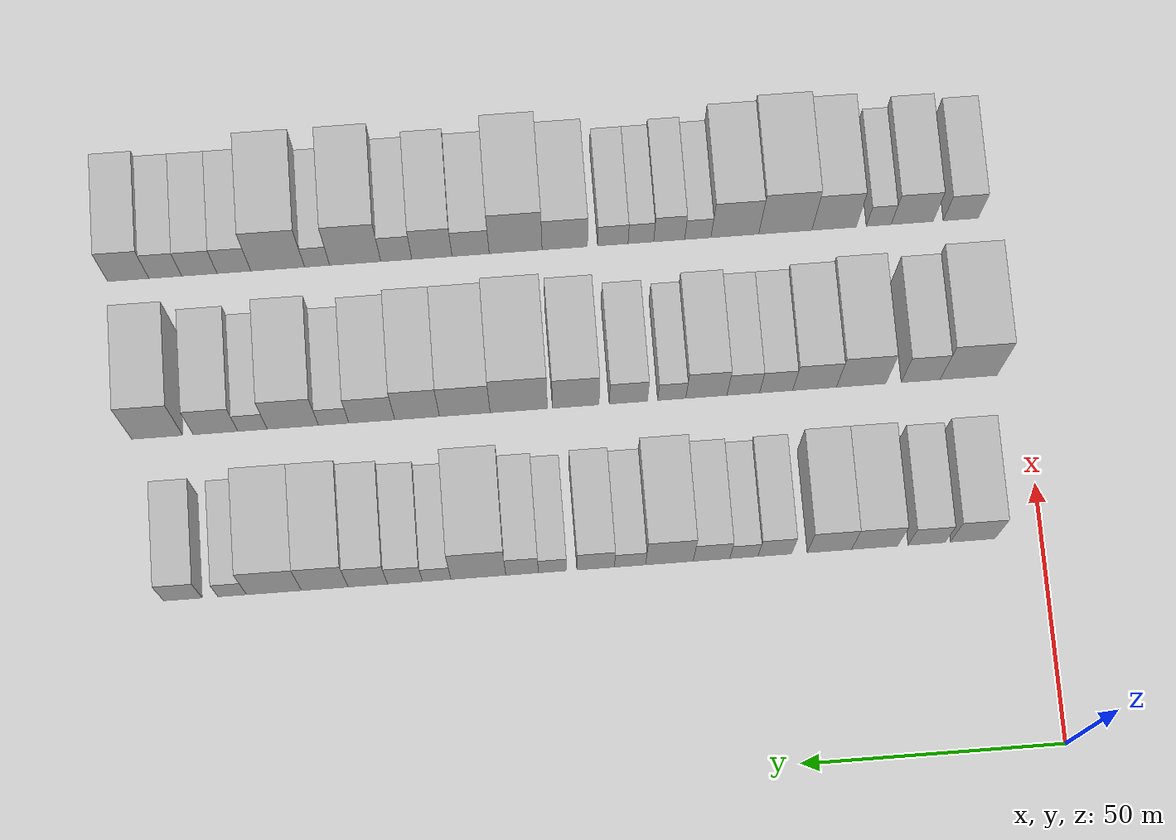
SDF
<sdf version="1.6">
 <world name="default">
  <model name="building_42">
   <static>1</static>
   <pose>50.0000 13.2089 0 0.000000 0.000000 0.000000</pose>
   <link name="link">
    <pose>0 0 9.00 0 0 0</pose>
    <collision name="collision"><geometry><box><size>20.0000 8.5713 18.0000</size></box></geometry></collision>
    <visual name="visual">
     <cast_shadows>0</cast_shadows>
     <geometry><box><size>20.0000 8.5713 18.0000</size></box></geometry>
     <material>
      <script>
       <uri>model://HANNAS_wall/materials/scripts</uri>
       <uri>model://HANNAS_wall/materials/textures</uri>
       <name>vrc/HANNAS_wall</name>
      </script>
     </material>
    </visual>
   </link>
  </model>
  <model name="building_43">
   <static>1</static>
   <pose>50.0000 22.0549 0 0.000000 0.000000 0.000000</pose>
   <link name="link">
    <pose>0 0 7.50 0 0 0</pose>
    <collision name="collision"><geometry><box><size>20.0000 7.1205 15.0000</size></box></geometry></collision>
    <visual name="visual">
     <cast_shadows>0</cast_shadows>
     <geometry><box><size>20.0000 7.1205 15.0000</size></box></geometry>
     <material>
      <script>
       <uri>model://HANNAS_wall/materials/scripts</uri>
       <uri>model://HANNAS_wall/materials/textures</uri>
       <name>vrc/HANNAS_wall</name>
      </script>
     </material>
    </visual>
   </link>
  </model>
  <model name="building_44">
   <static>1</static>
   <pose>50.0000 32.0292 0 0.000000 0.000000 0.000000</pose>
   <link name="link">
    <pose>0 0 9.00 0 0 0</pose>
    <collision name="collision"><geometry><box><size>20.0000 8.8283 18.0000</size></box></geometry></collision>
    <visual name="visual">
     <cast_shadows>0</cast_shadows>
     <geometry><box><size>20.0000 8.8283 18.0000</size></box></geometry>
     <material>
      <script>
       <uri>model://HANNAS_wall/materials/scripts</uri>
       <uri>model://HANNAS_wall/materials/textures</uri>
       <name>vrc/HANNAS_wall</name>
      </script>
     </material>
    </visual>
   </link>
  </model>
  <model name="building_45">
   <static>1</static>
   <pose>50.0000 40.6989 0 0.000000 0.000000 0.000000</pose>
   <link name="link">
    <pose>0 0 9.00 0 0 0</pose>
    <collision name="collision"><geometry><box><size>20.0000 8.5111 18.0000</size></box></geometry></collision>
    <visual name="visual">
     <cast_shadows>0</cast_shadows>
     <geometry><box><size>20.0000 8.5111 18.0000</size></box></geometry>
     <material>
      <script>
       <uri>model://HANNAS_wall/materials/scripts</uri>
       <uri>model://HANNAS_wall/materials/textures</uri>
       <name>vrc/HANNAS_wall</name>
      </script>
     </material>
    </visual>
   </link>
  </model>
  <model name="building_46">
   <static>1</static>
   <pose>50.0000 51.1816 0 0.000000 0.000000 0.000000</pose>
   <link name="link">
    <pose>0 0 7.50 0 0 0</pose>
    <collision name="collision"><geometry><box><size>20.0000 6.4541 15.0000</size></box></geometry></collision>
    <visual name="visual">
     <cast_shadows>0</cast_shadows>
     <geometry><box><size>20.0000 6.4541 15.0000</size></box></geometry>
     <material>
      <script>
       <uri>model://HANNAS_wall/materials/scripts</uri>
       <uri>model://HANNAS_wall/materials/textures</uri>
       <name>vrc/HANNAS_wall</name>
      </script>
     </material>
    </visual>
   </link>
  </model>
  <model name="building_47">
   <static>1</static>
   <pose>50.0000 57.1054 0 0.000000 0.000000 0.000000</pose>
   <link name="link">
    <pose>0 0 6.00 0 0 0</pose>
    <collision name="collision"><geometry><box><size>20.0000 5.3936 12.0000</size></box></geometry></collision>
    <visual name="visual">
     <cast_shadows>0</cast_shadows>
     <geometry><box><size>20.0000 5.3936 12.0000</size></box></geometry>
     <material>
      <script>
       <uri>model://HANNAS_wall/materials/scripts</uri>
       <uri>model://HANNAS_wall/materials/textures</uri>
       <name>vrc/HANNAS_wall</name>
      </script>
     </material>
    </visual>
   </link>
  </model>
  <model name="building_48">
   <static>1</static>
   <pose>50.0000 63.3091 0 0.000000 0.000000 0.000000</pose>
   <link name="link">
    <pose>0 0 7.50 0 0 0</pose>
    <collision name="collision"><geometry><box><size>20.0000 7.0137 15.0000</size></box></geometry></collision>
    <visual name="visual">
     <cast_shadows>0</cast_shadows>
     <geometry><box><size>20.0000 7.0137 15.0000</size></box></geometry>
     <material>
      <script>
       <uri>model://HANNAS_wall/materials/scripts</uri>
       <uri>model://HANNAS_wall/materials/textures</uri>
       <name>vrc/HANNAS_wall</name>
      </script>
     </material>
    </visual>
   </link>
  </model>
  <model name="building_49">
   <static>1</static>
   <pose>50.0000 71.3637 0 0.000000 0.000000 0.000000</pose>
   <link name="link">
    <pose>0 0 10.50 0 0 0</pose>
    <collision name="collision"><geometry><box><size>20.0000 9.0956 21.0000</size></box></geometry></collision>
    <visual name="visual">
     <cast_shadows>0</cast_shadows>
     <geometry><box><size>20.0000 9.0956 21.0000</size></box></geometry>
     <material>
      <script>
       <uri>model://HANNAS_wall/materials/scripts</uri>
       <uri>model://HANNAS_wall/materials/textures</uri>
       <name>vrc/HANNAS_wall</name>
      </script>
     </material>
    </visual>
   </link>
  </model>
  <model name="building_50">
   <static>1</static>
   <pose>50.0000 78.8789 0 0.000000 0.000000 0.000000</pose>
   <link name="link">
    <pose>0 0 6.00 0 0 0</pose>
    <collision name="collision"><geometry><box><size>20.0000 5.9347 12.0000</size></box></geometry></collision>
    <visual name="visual">
     <cast_shadows>0</cast_shadows>
     <geometry><box><size>20.0000 5.9347 12.0000</size></box></geometry>
     <material>
      <script>
       <uri>model://HANNAS_wall/materials/scripts</uri>
       <uri>model://HANNAS_wall/materials/textures</uri>
       <name>vrc/HANNAS_wall</name>
      </script>
     </material>
    </visual>
   </link>
  </model>
  <model name="building_51">
   <static>1</static>
   <pose>50.0000 85.4287 0 0.000000 0.000000 0.000000</pose>
   <link name="link">
    <pose>0 0 7.50 0 0 0</pose>
    <collision name="collision"><geometry><box><size>20.0000 7.1651 15.0000</size></box></geometry></collision>
    <visual name="visual">
     <cast_shadows>0</cast_shadows>
     <geometry><box><size>20.0000 7.1651 15.0000</size></box></geometry>
     <material>
      <script>
       <uri>model://HANNAS_wall/materials/scripts</uri>
       <uri>model://HANNAS_wall/materials/textures</uri>
       <name>vrc/HANNAS_wall</name>
      </script>
     </material>
    </visual>
   </link>
  </model>
  <model name="building_52">
   <static>1</static>
   <pose>50.0000 93.6907 0 0.000000 0.000000 0.000000</pose>
   <link name="link">
    <pose>0 0 6.00 0 0 0</pose>
    <collision name="collision"><geometry><box><size>20.0000 5.3589 12.0000</size></box></geometry></collision>
    <visual name="visual">
     <cast_shadows>0</cast_shadows>
     <geometry><box><size>20.0000 5.3589 12.0000</size></box></geometry>
     <material>
      <script>
       <uri>model://HANNAS_wall/materials/scripts</uri>
       <uri>model://HANNAS_wall/materials/textures</uri>
       <name>vrc/HANNAS_wall</name>
      </script>
     </material>
    </visual>
   </link>
  </model>
  <model name="building_53">
   <static>1</static>
   <pose>50.0000 99.4833 0 0.000000 0.000000 0.000000</pose>
   <link name="link">
    <pose>0 0 7.50 0 0 0</pose>
    <collision name="collision"><geometry><box><size>20.0000 6.2262 15.0000</size></box></geometry></collision>
    <visual name="visual">
     <cast_shadows>0</cast_shadows>
     <geometry><box><size>20.0000 6.2262 15.0000</size></box></geometry>
     <material>
      <script>
       <uri>model://HANNAS_wall/materials/scripts</uri>
       <uri>model://HANNAS_wall/materials/textures</uri>
       <name>vrc/HANNAS_wall</name>
      </script>
     </material>
    </visual>
   </link>
  </model>
  <model name="building_54">
   <static>1</static>
   <pose>50.0000 107.8251 0 0.000000 0.000000 0.000000</pose>
   <link name="link">
    <pose>0 0 12.00 0 0 0</pose>
    <collision name="collision"><geometry><box><size>20.0000 10.4574 24.0000</size></box></geometry></collision>
    <visual name="visual">
     <cast_shadows>0</cast_shadows>
     <geometry><box><size>20.0000 10.4574 24.0000</size></box></geometry>
     <material>
      <script>
       <uri>model://HANNAS_wall/materials/scripts</uri>
       <uri>model://HANNAS_wall/materials/textures</uri>
       <name>vrc/HANNAS_wall</name>
      </script>
     </material>
    </visual>
   </link>
  </model>
  <model name="building_55">
   <static>1</static>
   <pose>50.0000 115.7658 0 0.000000 0.000000 0.000000</pose>
   <link name="link">
    <pose>0 0 6.00 0 0 0</pose>
    <collision name="collision"><geometry><box><size>20.0000 5.4240 12.0000</size></box></geometry></collision>
    <visual name="visual">
     <cast_shadows>0</cast_shadows>
     <geometry><box><size>20.0000 5.4240 12.0000</size></box></geometry>
     <material>
      <script>
       <uri>model://HANNAS_wall/materials/scripts</uri>
       <uri>model://HANNAS_wall/materials/textures</uri>
       <name>vrc/HANNAS_wall</name>
      </script>
     </material>
    </visual>
   </link>
  </model>
  <model name="building_56">
   <static>1</static>
   <pose>50.0000 121.8006 0 0.000000 0.000000 0.000000</pose>
   <link name="link">
    <pose>0 0 7.50 0 0 0</pose>
    <collision name="collision"><geometry><box><size>20.0000 6.6455 15.0000</size></box></geometry></collision>
    <visual name="visual">
     <cast_shadows>0</cast_shadows>
     <geometry><box><size>20.0000 6.6455 15.0000</size></box></geometry>
     <material>
      <script>
       <uri>model://HANNAS_wall/materials/scripts</uri>
       <uri>model://HANNAS_wall/materials/textures</uri>
       <name>vrc/HANNAS_wall</name>
      </script>
     </material>
    </visual>
   </link>
  </model>
  <model name="building_57">
   <static>1</static>
   <pose>50.0000 128.8686 0 0.000000 0.000000 0.000000</pose>
   <link name="link">
    <pose>0 0 9.00 0 0 0</pose>
    <collision name="collision"><geometry><box><size>20.0000 7.4904 18.0000</size></box></geometry></collision>
    <visual name="visual">
     <cast_shadows>0</cast_shadows>
     <geometry><box><size>20.0000 7.4904 18.0000</size></box></geometry>
     <material>
      <script>
       <uri>model://HANNAS_wall/materials/scripts</uri>
       <uri>model://HANNAS_wall/materials/textures</uri>
       <name>vrc/HANNAS_wall</name>
      </script>
     </material>
    </visual>
   </link>
  </model>
  <model name="building_58">
   <static>1</static>
   <pose>50.0000 137.0572 0 0.000000 0.000000 0.000000</pose>
   <link name="link">
    <pose>0 0 10.50 0 0 0</pose>
    <collision name="collision"><geometry><box><size>20.0000 8.8868 21.0000</size></box></geometry></collision>
    <visual name="visual">
     <cast_shadows>0</cast_shadows>
     <geometry><box><size>20.0000 8.8868 21.0000</size></box></geometry>
     <material>
      <script>
       <uri>model://HANNAS_wall/materials/scripts</uri>
       <uri>model://HANNAS_wall/materials/textures</uri>
       <name>vrc/HANNAS_wall</name>
      </script>
     </material>
    </visual>
   </link>
  </model>
  <model name="building_59">
   <static>1</static>
   <pose>50.0000 146.7408 0 0.000000 0.000000 0.000000</pose>
   <link name="link">
    <pose>0 0 10.50 0 0 0</pose>
    <collision name="collision"><geometry><box><size>20.0000 10.4805 21.0000</size></box></geometry></collision>
    <visual name="visual">
     <cast_shadows>0</cast_shadows>
     <geometry><box><size>20.0000 10.4805 21.0000</size></box></geometry>
     <material>
      <script>
       <uri>model://HANNAS_wall/materials/scripts</uri>
       <uri>model://HANNAS_wall/materials/textures</uri>
       <name>vrc/HANNAS_wall</name>
      </script>
     </material>
    </visual>
   </link>
  </model>
  <model name="building_60">
   <static>1</static>
   <pose>50.0000 154.7017 0 0.000000 0.000000 0.000000</pose>
   <link name="link">
    <pose>0 0 6.00 0 0 0</pose>
    <collision name="collision"><geometry><box><size>20.0000 5.4412 12.0000</size></box></geometry></collision>
    <visual name="visual">
     <cast_shadows>0</cast_shadows>
     <geometry><box><size>20.0000 5.4412 12.0000</size></box></geometry>
     <material>
      <script>
       <uri>model://HANNAS_wall/materials/scripts</uri>
       <uri>model://HANNAS_wall/materials/textures</uri>
       <name>vrc/HANNAS_wall</name>
      </script>
     </material>
    </visual>
   </link>
  </model>
  <model name="building_61">
   <static>1</static>
   <pose>50.0000 164.0744 0 0.000000 0.000000 0.000000</pose>
   <link name="link">
    <pose>0 0 7.50 0 0 0</pose>
    <collision name="collision"><geometry><box><size>20.0000 7.3042 15.0000</size></box></geometry></collision>
    <visual name="visual">
     <cast_shadows>0</cast_shadows>
     <geometry><box><size>20.0000 7.3042 15.0000</size></box></geometry>
     <material>
      <script>
       <uri>model://HANNAS_wall/materials/scripts</uri>
       <uri>model://HANNAS_wall/materials/textures</uri>
       <name>vrc/HANNAS_wall</name>
      </script>
     </material>
    </visual>
   </link>
  </model>
  <model name="building_121">
   <static>1</static>
   <pose>82.0000 10.4962 0 0.000000 0.000000 0.000000</pose>
   <link name="link">
    <pose>0 0 12.00 0 0 0</pose>
    <collision name="collision"><geometry><box><size>20.0000 11.0767 24.0000</size></box></geometry></collision>
    <visual name="visual">
     <cast_shadows>0</cast_shadows>
     <geometry><box><size>20.0000 11.0767 24.0000</size></box></geometry>
     <material>
      <script>
       <uri>model://HANNAS_wall/materials/scripts</uri>
       <uri>model://HANNAS_wall/materials/textures</uri>
       <name>vrc/HANNAS_wall</name>
      </script>
     </material>
    </visual>
   </link>
  </model>
  <model name="building_122">
   <static>1</static>
   <pose>82.0000 19.8200 0 0.000000 0.000000 0.000000</pose>
   <link name="link">
    <pose>0 0 9.00 0 0 0</pose>
    <collision name="collision"><geometry><box><size>20.0000 7.5708 18.0000</size></box></geometry></collision>
    <visual name="visual">
     <cast_shadows>0</cast_shadows>
     <geometry><box><size>20.0000 7.5708 18.0000</size></box></geometry>
     <material>
      <script>
       <uri>model://HANNAS_wall/materials/scripts</uri>
       <uri>model://HANNAS_wall/materials/textures</uri>
       <name>vrc/HANNAS_wall</name>
      </script>
     </material>
    </visual>
   </link>
  </model>
  <model name="building_123">
   <static>1</static>
   <pose>82.0000 31.3996 0 0.000000 0.000000 0.000000</pose>
   <link name="link">
    <pose>0 0 10.50 0 0 0</pose>
    <collision name="collision"><geometry><box><size>20.0000 9.5884 21.0000</size></box></geometry></collision>
    <visual name="visual">
     <cast_shadows>0</cast_shadows>
     <geometry><box><size>20.0000 9.5884 21.0000</size></box></geometry>
     <material>
      <script>
       <uri>model://HANNAS_wall/materials/scripts</uri>
       <uri>model://HANNAS_wall/materials/textures</uri>
       <name>vrc/HANNAS_wall</name>
      </script>
     </material>
    </visual>
   </link>
  </model>
  <model name="building_124">
   <static>1</static>
   <pose>82.0000 40.4502 0 0.000000 0.000000 0.000000</pose>
   <link name="link">
    <pose>0 0 9.00 0 0 0</pose>
    <collision name="collision"><geometry><box><size>20.0000 8.5128 18.0000</size></box></geometry></collision>
    <visual name="visual">
     <cast_shadows>0</cast_shadows>
     <geometry><box><size>20.0000 8.5128 18.0000</size></box></geometry>
     <material>
      <script>
       <uri>model://HANNAS_wall/materials/scripts</uri>
       <uri>model://HANNAS_wall/materials/textures</uri>
       <name>vrc/HANNAS_wall</name>
      </script>
     </material>
    </visual>
   </link>
  </model>
  <model name="building_125">
   <static>1</static>
   <pose>82.0000 47.9183 0 0.000000 0.000000 0.000000</pose>
   <link name="link">
    <pose>0 0 7.50 0 0 0</pose>
    <collision name="collision"><geometry><box><size>20.0000 6.4233 15.0000</size></box></geometry></collision>
    <visual name="visual">
     <cast_shadows>0</cast_shadows>
     <geometry><box><size>20.0000 6.4233 15.0000</size></box></geometry>
     <material>
      <script>
       <uri>model://HANNAS_wall/materials/scripts</uri>
       <uri>model://HANNAS_wall/materials/textures</uri>
       <name>vrc/HANNAS_wall</name>
      </script>
     </material>
    </visual>
   </link>
  </model>
  <model name="building_126">
   <static>1</static>
   <pose>82.0000 54.2958 0 0.000000 0.000000 0.000000</pose>
   <link name="link">
    <pose>0 0 7.50 0 0 0</pose>
    <collision name="collision"><geometry><box><size>20.0000 6.3318 15.0000</size></box></geometry></collision>
    <visual name="visual">
     <cast_shadows>0</cast_shadows>
     <geometry><box><size>20.0000 6.3318 15.0000</size></box></geometry>
     <material>
      <script>
       <uri>model://HANNAS_wall/materials/scripts</uri>
       <uri>model://HANNAS_wall/materials/textures</uri>
       <name>vrc/HANNAS_wall</name>
      </script>
     </material>
    </visual>
   </link>
  </model>
  <model name="building_127">
   <static>1</static>
   <pose>82.0000 61.4639 0 0.000000 0.000000 0.000000</pose>
   <link name="link">
    <pose>0 0 9.00 0 0 0</pose>
    <collision name="collision"><geometry><box><size>20.0000 8.0044 18.0000</size></box></geometry></collision>
    <visual name="visual">
     <cast_shadows>0</cast_shadows>
     <geometry><box><size>20.0000 8.0044 18.0000</size></box></geometry>
     <material>
      <script>
       <uri>model://HANNAS_wall/materials/scripts</uri>
       <uri>model://HANNAS_wall/materials/textures</uri>
       <name>vrc/HANNAS_wall</name>
      </script>
     </material>
    </visual>
   </link>
  </model>
  <model name="building_128">
   <static>1</static>
   <pose>82.0000 68.1944 0 0.000000 0.000000 0.000000</pose>
   <link name="link">
    <pose>0 0 6.00 0 0 0</pose>
    <collision name="collision"><geometry><box><size>20.0000 5.4566 12.0000</size></box></geometry></collision>
    <visual name="visual">
     <cast_shadows>0</cast_shadows>
     <geometry><box><size>20.0000 5.4566 12.0000</size></box></geometry>
     <material>
      <script>
       <uri>model://HANNAS_wall/materials/scripts</uri>
       <uri>model://HANNAS_wall/materials/textures</uri>
       <name>vrc/HANNAS_wall</name>
      </script>
     </material>
    </visual>
   </link>
  </model>
  <model name="building_129">
   <static>1</static>
   <pose>82.0000 76.6176 0 0.000000 0.000000 0.000000</pose>
   <link name="link">
    <pose>0 0 7.50 0 0 0</pose>
    <collision name="collision"><geometry><box><size>20.0000 7.3899 15.0000</size></box></geometry></collision>
    <visual name="visual">
     <cast_shadows>0</cast_shadows>
     <geometry><box><size>20.0000 7.3899 15.0000</size></box></geometry>
     <material>
      <script>
       <uri>model://HANNAS_wall/materials/scripts</uri>
       <uri>model://HANNAS_wall/materials/textures</uri>
       <name>vrc/HANNAS_wall</name>
      </script>
     </material>
    </visual>
   </link>
  </model>
  <model name="building_130">
   <static>1</static>
   <pose>82.0000 86.8087 0 0.000000 0.000000 0.000000</pose>
   <link name="link">
    <pose>0 0 10.50 0 0 0</pose>
    <collision name="collision"><geometry><box><size>20.0000 8.9925 21.0000</size></box></geometry></collision>
    <visual name="visual">
     <cast_shadows>0</cast_shadows>
     <geometry><box><size>20.0000 8.9925 21.0000</size></box></geometry>
     <material>
      <script>
       <uri>model://HANNAS_wall/materials/scripts</uri>
       <uri>model://HANNAS_wall/materials/textures</uri>
       <name>vrc/HANNAS_wall</name>
      </script>
     </material>
    </visual>
   </link>
  </model>
  <model name="building_131">
   <static>1</static>
   <pose>82.0000 97.8301 0 0.000000 0.000000 0.000000</pose>
   <link name="link">
    <pose>0 0 12.00 0 0 0</pose>
    <collision name="collision"><geometry><box><size>20.0000 11.0503 24.0000</size></box></geometry></collision>
    <visual name="visual">
     <cast_shadows>0</cast_shadows>
     <geometry><box><size>20.0000 11.0503 24.0000</size></box></geometry>
     <material>
      <script>
       <uri>model://HANNAS_wall/materials/scripts</uri>
       <uri>model://HANNAS_wall/materials/textures</uri>
       <name>vrc/HANNAS_wall</name>
      </script>
     </material>
    </visual>
   </link>
  </model>
  <model name="building_132">
   <static>1</static>
   <pose>82.0000 108.2732 0 0.000000 0.000000 0.000000</pose>
   <link name="link">
    <pose>0 0 10.50 0 0 0</pose>
    <collision name="collision"><geometry><box><size>20.0000 9.8359 21.0000</size></box></geometry></collision>
    <visual name="visual">
     <cast_shadows>0</cast_shadows>
     <geometry><box><size>20.0000 9.8359 21.0000</size></box></geometry>
     <material>
      <script>
       <uri>model://HANNAS_wall/materials/scripts</uri>
       <uri>model://HANNAS_wall/materials/textures</uri>
       <name>vrc/HANNAS_wall</name>
      </script>
     </material>
    </visual>
   </link>
  </model>
  <model name="building_133">
   <static>1</static>
   <pose>82.0000 117.5085 0 0.000000 0.000000 0.000000</pose>
   <link name="link">
    <pose>0 0 10.50 0 0 0</pose>
    <collision name="collision"><geometry><box><size>20.0000 8.6346 21.0000</size></box></geometry></collision>
    <visual name="visual">
     <cast_shadows>0</cast_shadows>
     <geometry><box><size>20.0000 8.6346 21.0000</size></box></geometry>
     <material>
      <script>
       <uri>model://HANNAS_wall/materials/scripts</uri>
       <uri>model://HANNAS_wall/materials/textures</uri>
       <name>vrc/HANNAS_wall</name>
      </script>
     </material>
    </visual>
   </link>
  </model>
  <model name="building_134">
   <static>1</static>
   <pose>82.0000 126.2472 0 0.000000 0.000000 0.000000</pose>
   <link name="link">
    <pose>0 0 9.00 0 0 0</pose>
    <collision name="collision"><geometry><box><size>20.0000 8.8429 18.0000</size></box></geometry></collision>
    <visual name="visual">
     <cast_shadows>0</cast_shadows>
     <geometry><box><size>20.0000 8.8429 18.0000</size></box></geometry>
     <material>
      <script>
       <uri>model://HANNAS_wall/materials/scripts</uri>
       <uri>model://HANNAS_wall/materials/textures</uri>
       <name>vrc/HANNAS_wall</name>
      </script>
     </material>
    </visual>
   </link>
  </model>
  <model name="building_135">
   <static>1</static>
   <pose>82.0000 133.6064 0 0.000000 0.000000 0.000000</pose>
   <link name="link">
    <pose>0 0 6.00 0 0 0</pose>
    <collision name="collision"><geometry><box><size>20.0000 5.8756 12.0000</size></box></geometry></collision>
    <visual name="visual">
     <cast_shadows>0</cast_shadows>
     <geometry><box><size>20.0000 5.8756 12.0000</size></box></geometry>
     <material>
      <script>
       <uri>model://HANNAS_wall/materials/scripts</uri>
       <uri>model://HANNAS_wall/materials/textures</uri>
       <name>vrc/HANNAS_wall</name>
      </script>
     </material>
    </visual>
   </link>
  </model>
  <model name="building_136">
   <static>1</static>
   <pose>82.0000 141.4922 0 0.000000 0.000000 0.000000</pose>
   <link name="link">
    <pose>0 0 10.50 0 0 0</pose>
    <collision name="collision"><geometry><box><size>20.0000 9.8960 21.0000</size></box></geometry></collision>
    <visual name="visual">
     <cast_shadows>0</cast_shadows>
     <geometry><box><size>20.0000 9.8960 21.0000</size></box></geometry>
     <material>
      <script>
       <uri>model://HANNAS_wall/materials/scripts</uri>
       <uri>model://HANNAS_wall/materials/textures</uri>
       <name>vrc/HANNAS_wall</name>
      </script>
     </material>
    </visual>
   </link>
  </model>
  <model name="building_137">
   <static>1</static>
   <pose>82.0000 149.2783 0 0.000000 0.000000 0.000000</pose>
   <link name="link">
    <pose>0 0 6.00 0 0 0</pose>
    <collision name="collision"><geometry><box><size>20.0000 5.6762 12.0000</size></box></geometry></collision>
    <visual name="visual">
     <cast_shadows>0</cast_shadows>
     <geometry><box><size>20.0000 5.6762 12.0000</size></box></geometry>
     <material>
      <script>
       <uri>model://HANNAS_wall/materials/scripts</uri>
       <uri>model://HANNAS_wall/materials/textures</uri>
       <name>vrc/HANNAS_wall</name>
      </script>
     </material>
    </visual>
   </link>
  </model>
  <model name="building_138">
   <static>1</static>
   <pose>82.0000 156.4242 0 0.000000 0.000000 0.000000</pose>
   <link name="link">
    <pose>0 0 9.00 0 0 0</pose>
    <collision name="collision"><geometry><box><size>20.0000 8.6155 18.0000</size></box></geometry></collision>
    <visual name="visual">
     <cast_shadows>0</cast_shadows>
     <geometry><box><size>20.0000 8.6155 18.0000</size></box></geometry>
     <material>
      <script>
       <uri>model://HANNAS_wall/materials/scripts</uri>
       <uri>model://HANNAS_wall/materials/textures</uri>
       <name>vrc/HANNAS_wall</name>
      </script>
     </material>
    </visual>
   </link>
  </model>
  <model name="building_139">
   <static>1</static>
   <pose>82.0000 167.6638 0 0.000000 0.000000 0.000000</pose>
   <link name="link">
    <pose>0 0 12.00 0 0 0</pose>
    <collision name="collision"><geometry><box><size>20.0000 9.8636 24.0000</size></box></geometry></collision>
    <visual name="visual">
     <cast_shadows>0</cast_shadows>
     <geometry><box><size>20.0000 9.8636 24.0000</size></box></geometry>
     <material>
      <script>
       <uri>model://HANNAS_wall/materials/scripts</uri>
       <uri>model://HANNAS_wall/materials/textures</uri>
       <name>vrc/HANNAS_wall</name>
      </script>
     </material>
    </visual>
   </link>
  </model>
  <model name="building_202">
   <static>1</static>
   <pose>114.0000 8.5187 0 0.000000 0.000000 0.000000</pose>
   <link name="link">
    <pose>0 0 7.50 0 0 0</pose>
    <collision name="collision"><geometry><box><size>20.0000 6.9188 15.0000</size></box></geometry></collision>
    <visual name="visual">
     <cast_shadows>0</cast_shadows>
     <geometry><box><size>20.0000 6.9188 15.0000</size></box></geometry>
     <material>
      <script>
       <uri>model://HANNAS_wall/materials/scripts</uri>
       <uri>model://HANNAS_wall/materials/textures</uri>
       <name>vrc/HANNAS_wall</name>
      </script>
     </material>
    </visual>
   </link>
  </model>
  <model name="building_203">
   <static>1</static>
   <pose>114.0000 18.1159 0 0.000000 0.000000 0.000000</pose>
   <link name="link">
    <pose>0 0 9.00 0 0 0</pose>
    <collision name="collision"><geometry><box><size>20.0000 8.2757 18.0000</size></box></geometry></collision>
    <visual name="visual">
     <cast_shadows>0</cast_shadows>
     <geometry><box><size>20.0000 8.2757 18.0000</size></box></geometry>
     <material>
      <script>
       <uri>model://HANNAS_wall/materials/scripts</uri>
       <uri>model://HANNAS_wall/materials/textures</uri>
       <name>vrc/HANNAS_wall</name>
      </script>
     </material>
    </visual>
   </link>
  </model>
  <model name="building_204">
   <static>1</static>
   <pose>114.0000 24.7058 0 0.000000 0.000000 0.000000</pose>
   <link name="link">
    <pose>0 0 6.00 0 0 0</pose>
    <collision name="collision"><geometry><box><size>20.0000 4.9040 12.0000</size></box></geometry></collision>
    <visual name="visual">
     <cast_shadows>0</cast_shadows>
     <geometry><box><size>20.0000 4.9040 12.0000</size></box></geometry>
     <material>
      <script>
       <uri>model://HANNAS_wall/materials/scripts</uri>
       <uri>model://HANNAS_wall/materials/textures</uri>
       <name>vrc/HANNAS_wall</name>
      </script>
     </material>
    </visual>
   </link>
  </model>
  <model name="building_205">
   <static>1</static>
   <pose>114.0000 33.5244 0 0.000000 0.000000 0.000000</pose>
   <link name="link">
    <pose>0 0 10.50 0 0 0</pose>
    <collision name="collision"><geometry><box><size>20.0000 8.7333 21.0000</size></box></geometry></collision>
    <visual name="visual">
     <cast_shadows>0</cast_shadows>
     <geometry><box><size>20.0000 8.7333 21.0000</size></box></geometry>
     <material>
      <script>
       <uri>model://HANNAS_wall/materials/scripts</uri>
       <uri>model://HANNAS_wall/materials/textures</uri>
       <name>vrc/HANNAS_wall</name>
      </script>
     </material>
    </visual>
   </link>
  </model>
  <model name="building_206">
   <static>1</static>
   <pose>114.0000 43.1318 0 0.000000 0.000000 0.000000</pose>
   <link name="link">
    <pose>0 0 12.00 0 0 0</pose>
    <collision name="collision"><geometry><box><size>20.0000 10.4815 24.0000</size></box></geometry></collision>
    <visual name="visual">
     <cast_shadows>0</cast_shadows>
     <geometry><box><size>20.0000 10.4815 24.0000</size></box></geometry>
     <material>
      <script>
       <uri>model://HANNAS_wall/materials/scripts</uri>
       <uri>model://HANNAS_wall/materials/textures</uri>
       <name>vrc/HANNAS_wall</name>
      </script>
     </material>
    </visual>
   </link>
  </model>
  <model name="building_207">
   <static>1</static>
   <pose>114.0000 53.0750 0 0.000000 0.000000 0.000000</pose>
   <link name="link">
    <pose>0 0 10.50 0 0 0</pose>
    <collision name="collision"><geometry><box><size>20.0000 9.4049 21.0000</size></box></geometry></collision>
    <visual name="visual">
     <cast_shadows>0</cast_shadows>
     <geometry><box><size>20.0000 9.4049 21.0000</size></box></geometry>
     <material>
      <script>
       <uri>model://HANNAS_wall/materials/scripts</uri>
       <uri>model://HANNAS_wall/materials/textures</uri>
       <name>vrc/HANNAS_wall</name>
      </script>
     </material>
    </visual>
   </link>
  </model>
  <model name="building_208">
   <static>1</static>
   <pose>114.0000 60.3664 0 0.000000 0.000000 0.000000</pose>
   <link name="link">
    <pose>0 0 6.00 0 0 0</pose>
    <collision name="collision"><geometry><box><size>20.0000 5.1780 12.0000</size></box></geometry></collision>
    <visual name="visual">
     <cast_shadows>0</cast_shadows>
     <geometry><box><size>20.0000 5.1780 12.0000</size></box></geometry>
     <material>
      <script>
       <uri>model://HANNAS_wall/materials/scripts</uri>
       <uri>model://HANNAS_wall/materials/textures</uri>
       <name>vrc/HANNAS_wall</name>
      </script>
     </material>
    </visual>
   </link>
  </model>
  <model name="building_209">
   <static>1</static>
   <pose>114.0000 65.9997 0 0.000000 0.000000 0.000000</pose>
   <link name="link">
    <pose>0 0 7.50 0 0 0</pose>
    <collision name="collision"><geometry><box><size>20.0000 6.0887 15.0000</size></box></geometry></collision>
    <visual name="visual">
     <cast_shadows>0</cast_shadows>
     <geometry><box><size>20.0000 6.0887 15.0000</size></box></geometry>
     <material>
      <script>
       <uri>model://HANNAS_wall/materials/scripts</uri>
       <uri>model://HANNAS_wall/materials/textures</uri>
       <name>vrc/HANNAS_wall</name>
      </script>
     </material>
    </visual>
   </link>
  </model>
  <model name="building_210">
   <static>1</static>
   <pose>114.0000 71.5686 0 0.000000 0.000000 0.000000</pose>
   <link name="link">
    <pose>0 0 6.00 0 0 0</pose>
    <collision name="collision"><geometry><box><size>20.0000 5.0490 12.0000</size></box></geometry></collision>
    <visual name="visual">
     <cast_shadows>0</cast_shadows>
     <geometry><box><size>20.0000 5.0490 12.0000</size></box></geometry>
     <material>
      <script>
       <uri>model://HANNAS_wall/materials/scripts</uri>
       <uri>model://HANNAS_wall/materials/textures</uri>
       <name>vrc/HANNAS_wall</name>
      </script>
     </material>
    </visual>
   </link>
  </model>
  <model name="building_211">
   <static>1</static>
   <pose>114.0000 77.0795 0 0.000000 0.000000 0.000000</pose>
   <link name="link">
    <pose>0 0 6.00 0 0 0</pose>
    <collision name="collision"><geometry><box><size>20.0000 5.9727 12.0000</size></box></geometry></collision>
    <visual name="visual">
     <cast_shadows>0</cast_shadows>
     <geometry><box><size>20.0000 5.9727 12.0000</size></box></geometry>
     <material>
      <script>
       <uri>model://HANNAS_wall/materials/scripts</uri>
       <uri>model://HANNAS_wall/materials/textures</uri>
       <name>vrc/HANNAS_wall</name>
      </script>
     </material>
    </visual>
   </link>
  </model>
  <model name="building_212">
   <static>1</static>
   <pose>114.0000 86.5244 0 0.000000 0.000000 0.000000</pose>
   <link name="link">
    <pose>0 0 9.00 0 0 0</pose>
    <collision name="collision"><geometry><box><size>20.0000 8.9171 18.0000</size></box></geometry></collision>
    <visual name="visual">
     <cast_shadows>0</cast_shadows>
     <geometry><box><size>20.0000 8.9171 18.0000</size></box></geometry>
     <material>
      <script>
       <uri>model://HANNAS_wall/materials/scripts</uri>
       <uri>model://HANNAS_wall/materials/textures</uri>
       <name>vrc/HANNAS_wall</name>
      </script>
     </material>
    </visual>
   </link>
  </model>
  <model name="building_213">
   <static>1</static>
   <pose>114.0000 96.1691 0 0.000000 0.000000 0.000000</pose>
   <link name="link">
    <pose>0 0 12.00 0 0 0</pose>
    <collision name="collision"><geometry><box><size>20.0000 10.3723 24.0000</size></box></geometry></collision>
    <visual name="visual">
     <cast_shadows>0</cast_shadows>
     <geometry><box><size>20.0000 10.3723 24.0000</size></box></geometry>
     <material>
      <script>
       <uri>model://HANNAS_wall/materials/scripts</uri>
       <uri>model://HANNAS_wall/materials/textures</uri>
       <name>vrc/HANNAS_wall</name>
      </script>
     </material>
    </visual>
   </link>
  </model>
  <model name="building_214">
   <static>1</static>
   <pose>114.0000 105.0010 0 0.000000 0.000000 0.000000</pose>
   <link name="link">
    <pose>0 0 7.50 0 0 0</pose>
    <collision name="collision"><geometry><box><size>20.0000 7.2916 15.0000</size></box></geometry></collision>
    <visual name="visual">
     <cast_shadows>0</cast_shadows>
     <geometry><box><size>20.0000 7.2916 15.0000</size></box></geometry>
     <material>
      <script>
       <uri>model://HANNAS_wall/materials/scripts</uri>
       <uri>model://HANNAS_wall/materials/textures</uri>
       <name>vrc/HANNAS_wall</name>
      </script>
     </material>
    </visual>
   </link>
  </model>
  <model name="building_215">
   <static>1</static>
   <pose>114.0000 112.5920 0 0.000000 0.000000 0.000000</pose>
   <link name="link">
    <pose>0 0 9.00 0 0 0</pose>
    <collision name="collision"><geometry><box><size>20.0000 7.8904 18.0000</size></box></geometry></collision>
    <visual name="visual">
     <cast_shadows>0</cast_shadows>
     <geometry><box><size>20.0000 7.8904 18.0000</size></box></geometry>
     <material>
      <script>
       <uri>model://HANNAS_wall/materials/scripts</uri>
       <uri>model://HANNAS_wall/materials/textures</uri>
       <name>vrc/HANNAS_wall</name>
      </script>
     </material>
    </visual>
   </link>
  </model>
  <model name="building_216">
   <static>1</static>
   <pose>114.0000 119.5810 0 0.000000 0.000000 0.000000</pose>
   <link name="link">
    <pose>0 0 7.50 0 0 0</pose>
    <collision name="collision"><geometry><box><size>20.0000 6.0876 15.0000</size></box></geometry></collision>
    <visual name="visual">
     <cast_shadows>0</cast_shadows>
     <geometry><box><size>20.0000 6.0876 15.0000</size></box></geometry>
     <material>
      <script>
       <uri>model://HANNAS_wall/materials/scripts</uri>
       <uri>model://HANNAS_wall/materials/textures</uri>
       <name>vrc/HANNAS_wall</name>
      </script>
     </material>
    </visual>
   </link>
  </model>
  <model name="building_217">
   <static>1</static>
   <pose>114.0000 127.6362 0 0.000000 0.000000 0.000000</pose>
   <link name="link">
    <pose>0 0 12.00 0 0 0</pose>
    <collision name="collision"><geometry><box><size>20.0000 10.0228 24.0000</size></box></geometry></collision>
    <visual name="visual">
     <cast_shadows>0</cast_shadows>
     <geometry><box><size>20.0000 10.0228 24.0000</size></box></geometry>
     <material>
      <script>
       <uri>model://HANNAS_wall/materials/scripts</uri>
       <uri>model://HANNAS_wall/materials/textures</uri>
       <name>vrc/HANNAS_wall</name>
      </script>
     </material>
    </visual>
   </link>
  </model>
  <model name="building_218">
   <static>1</static>
   <pose>114.0000 135.1104 0 0.000000 0.000000 0.000000</pose>
   <link name="link">
    <pose>0 0 6.00 0 0 0</pose>
    <collision name="collision"><geometry><box><size>20.0000 4.9256 12.0000</size></box></geometry></collision>
    <visual name="visual">
     <cast_shadows>0</cast_shadows>
     <geometry><box><size>20.0000 4.9256 12.0000</size></box></geometry>
     <material>
      <script>
       <uri>model://HANNAS_wall/materials/scripts</uri>
       <uri>model://HANNAS_wall/materials/textures</uri>
       <name>vrc/HANNAS_wall</name>
      </script>
     </material>
    </visual>
   </link>
  </model>
  <model name="building_219">
   <static>1</static>
   <pose>114.0000 142.8264 0 0.000000 0.000000 0.000000</pose>
   <link name="link">
    <pose>0 0 12.00 0 0 0</pose>
    <collision name="collision"><geometry><box><size>20.0000 10.5063 24.0000</size></box></geometry></collision>
    <visual name="visual">
     <cast_shadows>0</cast_shadows>
     <geometry><box><size>20.0000 10.5063 24.0000</size></box></geometry>
     <material>
      <script>
       <uri>model://HANNAS_wall/materials/scripts</uri>
       <uri>model://HANNAS_wall/materials/textures</uri>
       <name>vrc/HANNAS_wall</name>
      </script>
     </material>
    </visual>
   </link>
  </model>
  <model name="building_220">
   <static>1</static>
   <pose>114.0000 151.3867 0 0.000000 0.000000 0.000000</pose>
   <link name="link">
    <pose>0 0 7.50 0 0 0</pose>
    <collision name="collision"><geometry><box><size>20.0000 6.6144 15.0000</size></box></geometry></collision>
    <visual name="visual">
     <cast_shadows>0</cast_shadows>
     <geometry><box><size>20.0000 6.6144 15.0000</size></box></geometry>
     <material>
      <script>
       <uri>model://HANNAS_wall/materials/scripts</uri>
       <uri>model://HANNAS_wall/materials/textures</uri>
       <name>vrc/HANNAS_wall</name>
      </script>
     </material>
    </visual>
   </link>
  </model>
  <model name="building_221">
   <static>1</static>
   <pose>114.0000 158.1545 0 0.000000 0.000000 0.000000</pose>
   <link name="link">
    <pose>0 0 7.50 0 0 0</pose>
    <collision name="collision"><geometry><box><size>20.0000 6.9211 15.0000</size></box></geometry></collision>
    <visual name="visual">
     <cast_shadows>0</cast_shadows>
     <geometry><box><size>20.0000 6.9211 15.0000</size></box></geometry>
     <material>
      <script>
       <uri>model://HANNAS_wall/materials/scripts</uri>
       <uri>model://HANNAS_wall/materials/textures</uri>
       <name>vrc/HANNAS_wall</name>
      </script>
     </material>
    </visual>
   </link>
  </model>
  <model name="building_222">
   <static>1</static>
   <pose>114.0000 164.8138 0 0.000000 0.000000 0.000000</pose>
   <link name="link">
    <pose>0 0 7.50 0 0 0</pose>
    <collision name="collision"><geometry><box><size>20.0000 6.3976 15.0000</size></box></geometry></collision>
    <visual name="visual">
     <cast_shadows>0</cast_shadows>
     <geometry><box><size>20.0000 6.3976 15.0000</size></box></geometry>
     <material>
      <script>
       <uri>model://HANNAS_wall/materials/scripts</uri>
       <uri>model://HANNAS_wall/materials/textures</uri>
       <name>vrc/HANNAS_wall</name>
      </script>
     </material>
    </visual>
   </link>
  </model>
  <model name="building_223">
   <static>1</static>
   <pose>114.0000 172.0372 0 0.000000 0.000000 0.000000</pose>
   <link name="link">
    <pose>0 0 9.00 0 0 0</pose>
    <collision name="collision"><geometry><box><size>20.0000 8.0492 18.0000</size></box></geometry></collision>
    <visual name="visual">
     <cast_shadows>0</cast_shadows>
     <geometry><box><size>20.0000 8.0492 18.0000</size></box></geometry>
     <material>
      <script>
       <uri>model://HANNAS_wall/materials/scripts</uri>
       <uri>model://HANNAS_wall/materials/textures</uri>
       <name>vrc/HANNAS_wall</name>
      </script>
     </material>
    </visual>
   </link>
  </model>
 </world>
</sdf>
